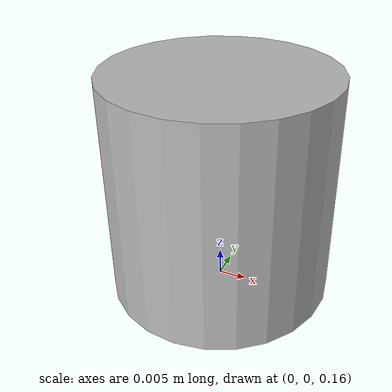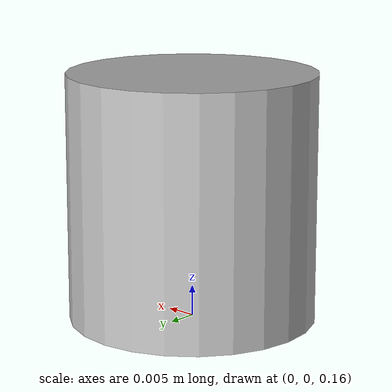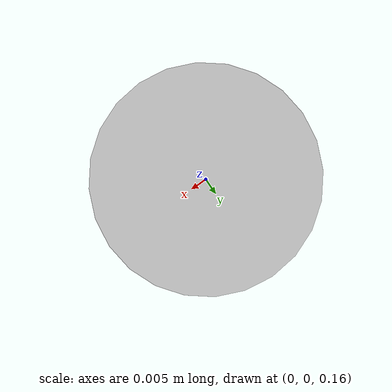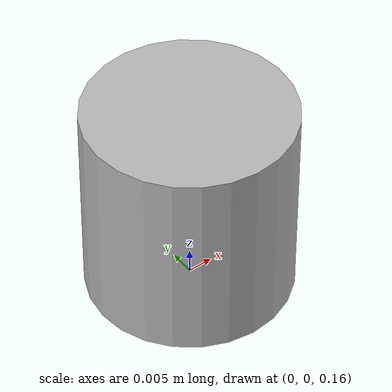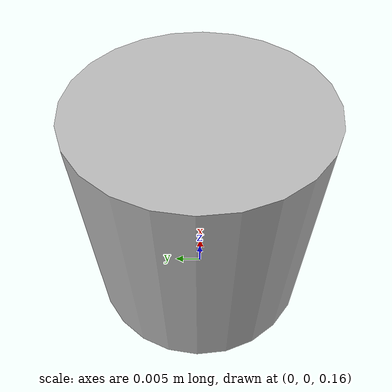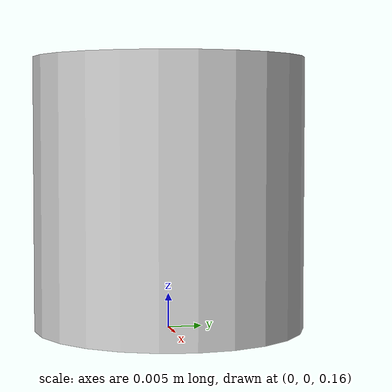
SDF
<?xml version='1.0'?>
<sdf version='1.9'>
  <model name='camera_downward'>
    <pose>0 0 0.18 0 0 0</pose>

    <link name='camera_link'>

      <inertial>
        <mass>0.05</mass>
        <inertia>
          <ixx>0.00001</ixx>
          <iyy>0.00001</iyy>
          <izz>0.00001</izz>
        </inertia>
      </inertial>

      <!-- small visual body -->
      <visual name='body'>
        <geometry>
          <cylinder>
            <radius>0.02</radius>
            <length>0.04</length>
          </cylinder>
        </geometry>
      </visual>

      <sensor name="camera" type="camera">
        <!-- POINT STRAIGHT DOWN -->
        <pose degrees="true">0 0 0 0 -90 0</pose>

        <camera>
          <horizontal_fov>1.57</horizontal_fov>
          <image>
            <width>640</width>
            <height>480</height>
          </image>
          <clip>
            <near>0.05</near>
            <far>1000</far>
          </clip>
        </camera>

        <always_on>1</always_on>
        <update_rate>20</update_rate>
        <visualize>1</visualize>

        <plugin name="GstCameraPlugin"
                filename="GstCameraPlugin">
          <udp_host>127.0.0.1</udp_host>
          <udp_port>5600</udp_port>
          <use_basic_pipeline>true</use_basic_pipeline>
        </plugin>

      </sensor>

    </link>
  </model>
</sdf>
